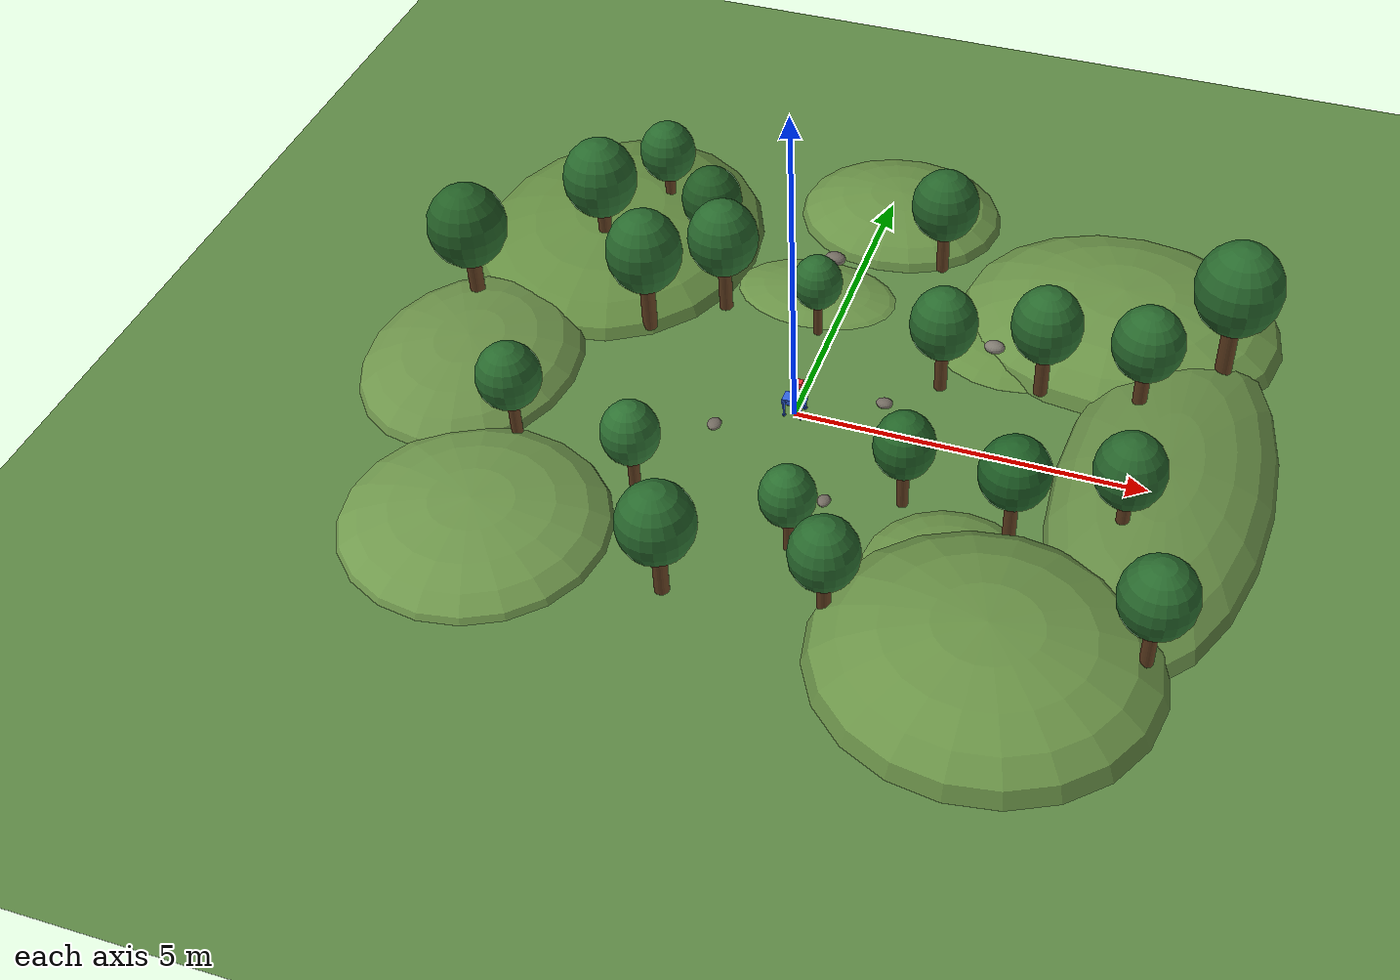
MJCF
<mujoco model="quadruped">
  <compiler angle="radian" inertiafromgeom="true"/>
  <option gravity="0 0 -9.81" timestep="0.002"/>

  <visual>
    <headlight diffuse="0.45 0.45 0.4" ambient="0.25 0.28 0.3" specular="0.2 0.2 0.2"/>
    <rgba haze="0.55 0.65 0.75 1"/>
    <global azimuth="140" elevation="-20"/>
  </visual>

  <default>
    <joint damping="1.0" armature="0.01" limited="true"/>
    <geom friction="1.2 0.005 0.0001" condim="3" margin="0.001"/>
    <position kp="120" kv="8" ctrlrange="-1.8 1.8" forcerange="-40 40"/>
    <default class="hill">
      <geom type="ellipsoid" rgba="0.42 0.58 0.28 1" friction="1.4 0.01 0.001" contype="1" conaffinity="1"/>
    </default>
    <default class="tree_trunk">
      <geom type="cylinder" rgba="0.38 0.24 0.12 1" friction="0.9 0.005 0.0001" contype="1" conaffinity="1"/>
    </default>
    <default class="tree_crown">
      <geom type="ellipsoid" rgba="0.16 0.42 0.18 1" friction="0.6 0.005 0.0001" contype="1" conaffinity="1"/>
    </default>
    <default class="rock">
      <geom type="ellipsoid" rgba="0.45 0.42 0.38 1" friction="1.3 0.01 0.001" contype="1" conaffinity="1"/>
    </default>
  </default>

  <asset>
    <texture type="skybox" builtin="gradient" rgb1="0.45 0.62 0.82" rgb2="0.85 0.9 0.95" width="512" height="512"/>
  </asset>

  <worldbody>
    <!-- Outdoor navigation arena: flat spawn, hills, tree corridors -->
    <geom name="floor" type="plane" size="10 10 0.1" rgba="0.38 0.55 0.28 1" friction="1.3 0.01 0.001"/>
    <light name="sun" pos="4 2 10" dir="-0.35 -0.2 -1" diffuse="0.9 0.85 0.7" specular="0.3 0.3 0.25" castshadow="true"/>
    <light name="fill" pos="-3 -4 6" dir="0.4 0.5 -1" diffuse="0.25 0.3 0.35"/>

    <!-- Hills: taller ellipsoids forming valleys / climbable routes. Spawn |xy|<1.2 stays flat. -->
    <geom name="hill_ne" class="hill" pos="4.0 3.2 -0.05" size="2.4 2.0 0.75"/>
    <geom name="hill_nw" class="hill" pos="-3.8 3.0 -0.08" size="2.2 2.5 0.7" rgba="0.4 0.56 0.26 1"/>
    <geom name="hill_se" class="hill" pos="3.6 -3.5 -0.04" size="2.3 2.1 0.85"/>
    <geom name="hill_sw" class="hill" pos="-3.4 -3.2 -0.1" size="1.9 1.8 0.55" rgba="0.44 0.6 0.3 1"/>
    <geom name="hill_east_ridge" class="hill" pos="5.2 0.0 -0.06" size="1.5 3.4 0.65" rgba="0.4 0.55 0.27 1"/>
    <geom name="hill_north_knoll" class="hill" pos="0.2 4.8 -0.05" size="1.6 1.4 0.5"/>
    <geom name="hill_mid_west" class="hill" pos="-4.8 -0.3 -0.08" size="1.6 1.9 0.55" rgba="0.43 0.58 0.29 1"/>
    <geom name="hill_near_ne" class="hill" pos="2.6 2.4 -0.12" size="1.3 1.1 0.35" rgba="0.41 0.57 0.27 1"/>
    <geom name="hill_near_se" class="hill" pos="2.8 -2.2 -0.1" size="1.2 1.15 0.32"/>
    <geom name="hill_saddle" class="hill" pos="-0.5 2.6 -0.15" size="1.4 0.9 0.28" rgba="0.42 0.58 0.28 1"/>

    <!-- Trees: corridors and chokepoints for path planning (clear +x lane ~y in [-0.6, 0.6]). -->
    <!-- East corridor walls -->
    <body name="tree_a" pos="1.8 1.15 0">
      <geom class="tree_trunk" size="0.09 0.5" pos="0 0 0.5"/>
      <geom class="tree_crown" size="0.48 0.48 0.55" pos="0 0 1.2"/>
    </body>
    <body name="tree_b" pos="1.9 -1.2 0">
      <geom class="tree_trunk" size="0.08 0.45" pos="0 0 0.45"/>
      <geom class="tree_crown" size="0.42 0.42 0.5" pos="0 0 1.1" rgba="0.14 0.4 0.16 1"/>
    </body>
    <body name="tree_e" pos="3.2 1.35 0.12">
      <geom class="tree_trunk" size="0.1 0.5" pos="0 0 0.5"/>
      <geom class="tree_crown" size="0.5 0.5 0.58" pos="0 0 1.25"/>
    </body>
    <body name="tree_f" pos="3.4 -1.4 0.1">
      <geom class="tree_trunk" size="0.09 0.48" pos="0 0 0.48"/>
      <geom class="tree_crown" size="0.48 0.48 0.52" pos="0 0 1.15" rgba="0.12 0.38 0.15 1"/>
    </body>
    <body name="tree_p" pos="4.6 1.2 0.28">
      <geom class="tree_trunk" size="0.1 0.52" pos="0 0 0.52"/>
      <geom class="tree_crown" size="0.5 0.5 0.55" pos="0 0 1.25"/>
    </body>
    <body name="tree_q" pos="4.8 -1.1 0.22">
      <geom class="tree_trunk" size="0.09 0.5" pos="0 0 0.5"/>
      <geom class="tree_crown" size="0.48 0.48 0.55" pos="0 0 1.2" rgba="0.15 0.4 0.17 1"/>
    </body>
    <!-- Northwest grove (dense, weave-through) -->
    <body name="tree_c" pos="-1.7 1.9 0">
      <geom class="tree_trunk" size="0.1 0.55" pos="0 0 0.55"/>
      <geom class="tree_crown" size="0.52 0.52 0.6" pos="0 0 1.3"/>
    </body>
    <body name="tree_g" pos="-2.6 1.1 0.05">
      <geom class="tree_trunk" size="0.11 0.6" pos="0 0 0.6"/>
      <geom class="tree_crown" size="0.55 0.55 0.65" pos="0 0 1.4"/>
    </body>
    <body name="tree_r" pos="-2.2 2.8 0.08">
      <geom class="tree_trunk" size="0.09 0.48" pos="0 0 0.48"/>
      <geom class="tree_crown" size="0.45 0.45 0.52" pos="0 0 1.15" rgba="0.13 0.36 0.14 1"/>
    </body>
    <body name="tree_l" pos="-3.8 2.4 0.2">
      <geom class="tree_trunk" size="0.1 0.55" pos="0 0 0.55"/>
      <geom class="tree_crown" size="0.55 0.55 0.62" pos="0 0 1.35"/>
    </body>
    <body name="tree_n" pos="-3.2 3.6 0.25">
      <geom class="tree_trunk" size="0.08 0.44" pos="0 0 0.44"/>
      <geom class="tree_crown" size="0.42 0.42 0.48" pos="0 0 1.08"/>
    </body>
    <!-- Southwest / south obstacles -->
    <body name="tree_d" pos="-1.6 -2.0 0">
      <geom class="tree_trunk" size="0.08 0.42" pos="0 0 0.42"/>
      <geom class="tree_crown" size="0.4 0.4 0.48" pos="0 0 1.05" rgba="0.18 0.45 0.2 1"/>
    </body>
    <body name="tree_h" pos="-3.5 -1.6 0.08">
      <geom class="tree_trunk" size="0.08 0.45" pos="0 0 0.45"/>
      <geom class="tree_crown" size="0.45 0.45 0.5" pos="0 0 1.1"/>
    </body>
    <body name="tree_o" pos="0.7 -2.4 0">
      <geom class="tree_trunk" size="0.07 0.4" pos="0 0 0.4"/>
      <geom class="tree_crown" size="0.38 0.38 0.45" pos="0 0 0.98" rgba="0.17 0.44 0.19 1"/>
    </body>
    <body name="tree_j" pos="-0.6 -3.6 0.05">
      <geom class="tree_trunk" size="0.1 0.52" pos="0 0 0.52"/>
      <geom class="tree_crown" size="0.52 0.52 0.58" pos="0 0 1.25"/>
    </body>
    <body name="tree_s" pos="1.5 -3.4 0.08">
      <geom class="tree_trunk" size="0.09 0.48" pos="0 0 0.48"/>
      <geom class="tree_crown" size="0.46 0.46 0.52" pos="0 0 1.15"/>
    </body>
    <!-- North / far perimeter -->
    <body name="tree_i" pos="1.2 3.5 0.18">
      <geom class="tree_trunk" size="0.09 0.5" pos="0 0 0.5"/>
      <geom class="tree_crown" size="0.5 0.5 0.55" pos="0 0 1.2" rgba="0.15 0.4 0.17 1"/>
    </body>
    <body name="tree_k" pos="5.6 2.3 0.35">
      <geom class="tree_trunk" size="0.12 0.65" pos="0 0 0.65"/>
      <geom class="tree_crown" size="0.62 0.62 0.7" pos="0 0 1.5"/>
    </body>
    <body name="tree_m" pos="5.5 -3.2 0.4">
      <geom class="tree_trunk" size="0.09 0.48" pos="0 0 0.48"/>
      <geom class="tree_crown" size="0.5 0.5 0.55" pos="0 0 1.2"/>
    </body>
    <body name="tree_t" pos="-5.2 0.8 0.15">
      <geom class="tree_trunk" size="0.11 0.58" pos="0 0 0.58"/>
      <geom class="tree_crown" size="0.58 0.58 0.64" pos="0 0 1.38" rgba="0.14 0.38 0.15 1"/>
    </body>
    <body name="tree_u" pos="-0.2 1.7 0.05">
      <geom class="tree_trunk" size="0.07 0.4" pos="0 0 0.4"/>
      <geom class="tree_crown" size="0.36 0.36 0.42" pos="0 0 0.95"/>
    </body>

    <!-- Rocks for local foot / path obstacles -->
    <geom name="rock_1" class="rock" pos="1.15 0.55 0.04" size="0.12 0.1 0.06"/>
    <geom name="rock_2" class="rock" pos="-1.0 -0.55 0.035" size="0.1 0.12 0.05"/>
    <geom name="rock_3" class="rock" pos="2.4 1.9 0.28" size="0.15 0.12 0.08" rgba="0.5 0.48 0.44 1"/>
    <geom name="rock_4" class="rock" pos="-2.5 -2.6 0.12" size="0.14 0.11 0.07"/>
    <geom name="rock_5" class="rock" pos="0.9 -1.5 0.04" size="0.09 0.11 0.05"/>
    <geom name="rock_6" class="rock" pos="-0.4 3.2 0.22" size="0.16 0.13 0.09"/>

    <!-- Quadruped -->
    <body name="torso" pos="0 0 0.28">
      <freejoint name="root"/>
      <geom name="torso" type="box" size="0.16 0.09 0.045" mass="3.0" rgba="0.2 0.4 0.9 1"/>
      <site name="imu" pos="0 0 0" size="0.01" rgba="1 1 0 0.3"/>

      <!-- Front-left: hip abduction (x), hip flexion (y), knee (y) -->
      <body name="fl_abad" pos="0.12 0.09 0">
        <joint name="fl_abad" type="hinge" axis="1 0 0" range="-0.6 0.6"/>
        <geom type="sphere" size="0.025" rgba="0.15 0.35 0.8 1" mass="0.05"/>
        <body name="fl_hip" pos="0 0.02 0">
          <joint name="fl_hip" type="hinge" axis="0 1 0" range="-1.2 1.2"/>
          <geom type="capsule" fromto="0 0 0 0 0 -0.11" size="0.02" rgba="0.2 0.4 0.9 1" mass="0.15"/>
          <body name="fl_knee" pos="0 0 -0.11">
            <joint name="fl_knee" type="hinge" axis="0 1 0" range="-2.2 -0.1"/>
            <geom type="capsule" fromto="0 0 0 0 0 -0.11" size="0.018" rgba="0.25 0.45 0.95 1" mass="0.1"/>
            <geom name="fl_foot" type="sphere" pos="0 0 -0.11" size="0.028"
                  rgba="0.1 0.25 0.6 1" mass="0.04" friction="1.5 0.01 0.001"/>
          </body>
        </body>
      </body>

      <!-- Front-right -->
      <body name="fr_abad" pos="0.12 -0.09 0">
        <joint name="fr_abad" type="hinge" axis="1 0 0" range="-0.6 0.6"/>
        <geom type="sphere" size="0.025" rgba="0.15 0.35 0.8 1" mass="0.05"/>
        <body name="fr_hip" pos="0 -0.02 0">
          <joint name="fr_hip" type="hinge" axis="0 1 0" range="-1.2 1.2"/>
          <geom type="capsule" fromto="0 0 0 0 0 -0.11" size="0.02" rgba="0.2 0.4 0.9 1" mass="0.15"/>
          <body name="fr_knee" pos="0 0 -0.11">
            <joint name="fr_knee" type="hinge" axis="0 1 0" range="-2.2 -0.1"/>
            <geom type="capsule" fromto="0 0 0 0 0 -0.11" size="0.018" rgba="0.25 0.45 0.95 1" mass="0.1"/>
            <geom name="fr_foot" type="sphere" pos="0 0 -0.11" size="0.028"
                  rgba="0.1 0.25 0.6 1" mass="0.04" friction="1.5 0.01 0.001"/>
          </body>
        </body>
      </body>

      <!-- Hind-left -->
      <body name="hl_abad" pos="-0.12 0.09 0">
        <joint name="hl_abad" type="hinge" axis="1 0 0" range="-0.6 0.6"/>
        <geom type="sphere" size="0.025" rgba="0.15 0.35 0.8 1" mass="0.05"/>
        <body name="hl_hip" pos="0 0.02 0">
          <joint name="hl_hip" type="hinge" axis="0 1 0" range="-1.2 1.2"/>
          <geom type="capsule" fromto="0 0 0 0 0 -0.11" size="0.02" rgba="0.2 0.4 0.9 1" mass="0.15"/>
          <body name="hl_knee" pos="0 0 -0.11">
            <joint name="hl_knee" type="hinge" axis="0 1 0" range="-2.2 -0.1"/>
            <geom type="capsule" fromto="0 0 0 0 0 -0.11" size="0.018" rgba="0.25 0.45 0.95 1" mass="0.1"/>
            <geom name="hl_foot" type="sphere" pos="0 0 -0.11" size="0.028"
                  rgba="0.1 0.25 0.6 1" mass="0.04" friction="1.5 0.01 0.001"/>
          </body>
        </body>
      </body>

      <!-- Hind-right -->
      <body name="hr_abad" pos="-0.12 -0.09 0">
        <joint name="hr_abad" type="hinge" axis="1 0 0" range="-0.6 0.6"/>
        <geom type="sphere" size="0.025" rgba="0.15 0.35 0.8 1" mass="0.05"/>
        <body name="hr_hip" pos="0 -0.02 0">
          <joint name="hr_hip" type="hinge" axis="0 1 0" range="-1.2 1.2"/>
          <geom type="capsule" fromto="0 0 0 0 0 -0.11" size="0.02" rgba="0.2 0.4 0.9 1" mass="0.15"/>
          <body name="hr_knee" pos="0 0 -0.11">
            <joint name="hr_knee" type="hinge" axis="0 1 0" range="-2.2 -0.1"/>
            <geom type="capsule" fromto="0 0 0 0 0 -0.11" size="0.018" rgba="0.25 0.45 0.95 1" mass="0.1"/>
            <geom name="hr_foot" type="sphere" pos="0 0 -0.11" size="0.028"
                  rgba="0.1 0.25 0.6 1" mass="0.04" friction="1.5 0.01 0.001"/>
          </body>
        </body>
      </body>
    </body>

    <!-- Falling red box (disturbance) -->
    <body name="red_box" pos="0.05 0.05 0.55">
      <freejoint/>
      <geom type="box" size="0.05 0.05 0.05" rgba="0.9 0.2 0.2 1" mass="0.15"/>
    </body>
  </worldbody>

  <actuator>
    <position name="fl_abad" joint="fl_abad"/>
    <position name="fl_hip" joint="fl_hip"/>
    <position name="fl_knee" joint="fl_knee"/>
    <position name="fr_abad" joint="fr_abad"/>
    <position name="fr_hip" joint="fr_hip"/>
    <position name="fr_knee" joint="fr_knee"/>
    <position name="hl_abad" joint="hl_abad"/>
    <position name="hl_hip" joint="hl_hip"/>
    <position name="hl_knee" joint="hl_knee"/>
    <position name="hr_abad" joint="hr_abad"/>
    <position name="hr_hip" joint="hr_hip"/>
    <position name="hr_knee" joint="hr_knee"/>
  </actuator>

  <keyframe>
    <!-- Standing crouch + red box above as a disturbance -->
    <!-- torso freejoint (7) + 12 hinges + red_box freejoint (7) -->
    <key name="stand"
         qpos="0 0 0.22 1 0 0 0
               0.15 0.45 -0.9
               -0.15 0.45 -0.9
               0.15 0.55 -0.95
               -0.15 0.55 -0.95
               0.05 0.05 0.55 1 0 0 0"/>
  </keyframe>
</mujoco>
